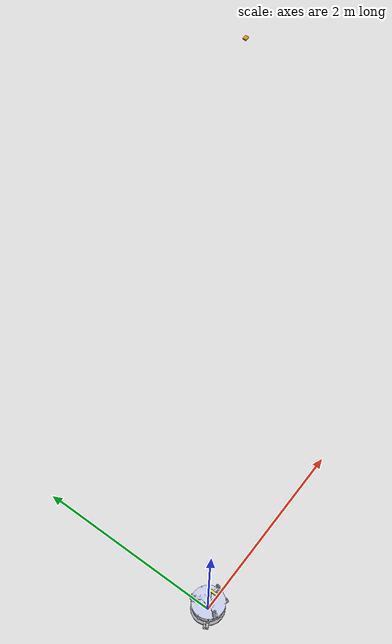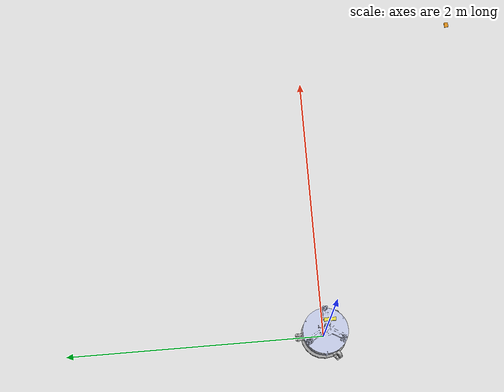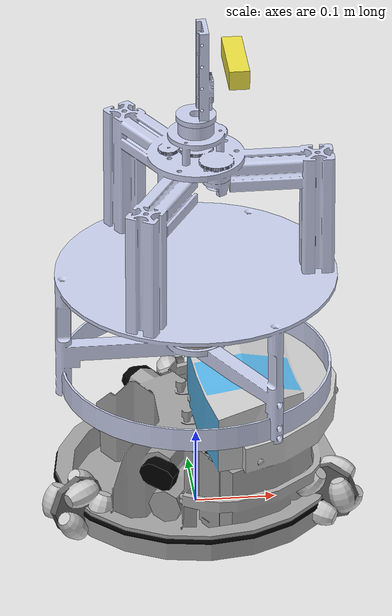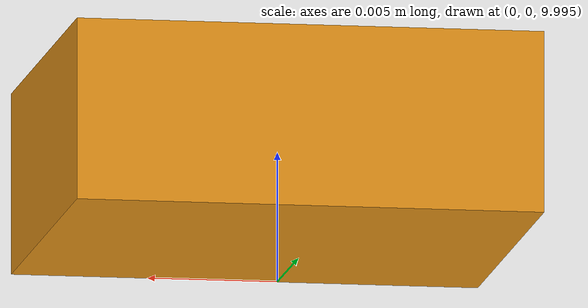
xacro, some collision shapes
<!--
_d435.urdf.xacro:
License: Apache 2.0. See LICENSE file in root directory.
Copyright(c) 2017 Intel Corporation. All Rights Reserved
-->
<?xml version="1.0"?>
<robot name="robotino" xmlns:xacro="http://wiki.ros.org/xacro">

    <xacro:include filename="$(find robotino_description)/urdf/robotino_body.urdf.xacro"/>
    <xacro:include filename="$(find robotino_description)/urdf/robotino_parts.urdf.xacro"/>
    <robotino_body/>

    <xacro:include filename="$(find realsense2_description)/urdf/_d435.urdf.xacro"/>
    <xacro:arg name="use_nominal_extrinsics" default="false"/>
    <xacro:sensor_d435
        parent="cameraholder_link">
        <origin xyz="0.0235 -0.022 0.32" rpy="3.141592 0 0"/>
    </xacro:sensor_d435>

</robot>

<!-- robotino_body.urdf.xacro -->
<robot xmlns:xacro="http://wiki.ros.org/xacro">
    <xacro:property name="M_SCALE" value="0.01"/>
    <xacro:property name="BASE_RADIUS" value="0.18"/>
    <xacro:property name="BASE_HEIGHT" value="0.03"/>
    <xacro:property name="BASE_MASS" value="20"/>

    <xacro:property name="M_PI" value="3.1415926535897931"/>
    <xacro:property name="width" value="0.5"/> <!-- Square dimensions (widthxwidth) of beams -->
    <xacro:property name="height" value="0.5"/> <!-- Link 1 -->
    <xacro:property name="width_2" value="0.1"/> <!-- Square dimensions (widthxwidth) of beams -->
    <xacro:property name="height_2" value="0.5"/> <!-- Link 1 -->
    <xacro:property name="axel_offset" value="0.05"/> <!-- Space btw top of beam and the each joint -->

    <xacro:property name="roll" value="${M_PI/2}"/> <!-- Space btw top of beam and the each joint -->
    <xacro:property name="yaw" value="${M_PI/2}"/> <!-- Space btw top of beam and the each joint -->

    <!-- robotino_body -->
    <xacro:macro name="robotino_body">
        <!-- base_link -->
        <link name="base_link"/>

        <joint name="base_body_joint" type="fixed">
            <parent link="base_link"/>
            <child link="base_body_link"/>
            <origin xyz="0 0 0" rpy="0 0 3.1415"/>
        </joint>

        <link name="base_body_link">
            <inertial>
                <mass value="${BASE_MASS}"/>
                <origin xyz="0 0 0.035" rpy="0 0 3.1415"/>
                <inertia ixx="0.8750" ixy="0.0" ixz="0.0"
                         iyy="0.875" iyz="0.0"
                         izz="1"/>
            </inertial>
            <visual>
                <origin xyz="0.01 0 0" rpy="0 0 ${M_PI/2}"/>
                <geometry>
                    <mesh filename="package://robotino_description/meshes/parts/robotino_base.dae"
                          scale="${M_SCALE} ${M_SCALE} ${M_SCALE}"/>
                </geometry>
            </visual>
            <collision>
                <origin xyz="0 0 0" rpy="0 0 ${M_PI/2}"/>
                <geometry>
                    <mesh filename="package://robotino_description/meshes/parts/robotino_base.stl"
                          scale="${M_SCALE} ${M_SCALE} ${M_SCALE}"/>
                </geometry>
            </collision>
        </link>

        <!-- wheels -->
        <xacro:wheel name="wheel2" parent="base_link">
            <origin xyz="-0.0001 0.1825 0.059154" rpy="0 0 0"/>
    	    <axis xyz="0 1 0" rpy="0 0 0"/>
        </xacro:wheel>
        <xacro:wheel name="wheel0" parent="base_link">
            <origin xyz="-0.157067 -0.090625 0.059154" rpy="0 0 2.094395102393195"/>
    	    <axis xyz="0 1 0" rpy="0 0 0"/>
        </xacro:wheel>
        <xacro:wheel name="wheel1" parent="base_link">
            <origin xyz="0.156867 -0.090625 0.059154" rpy="0 0 -2.094395102393195"/>
   	    <axis xyz="0 1 0" rpy="0 0 0"/>
        </xacro:wheel>

        <!-- others -->
        <!-- lasersensor -->
        <xacro:lasersensor name="lasersensor" parent="base_link">
            <origin xyz="0.0 0 0.26" rpy="0 0 0"/>
        </xacro:lasersensor>

        <!-- pantilt holder part 1-->
        <xacro:pantilt name="pantilt" parent="base_link">
            <origin xyz="0.0 0 0.325" rpy="0 0 0"/>
        </xacro:pantilt>

        <!-- pantilt holder part 2-->
        <xacro:pantiltring name="pantiltring" parent="base_link">
            <origin xyz="0.0 0 0.173" rpy="0 0 0"/>
        </xacro:pantiltring>

        <!-- pantilt holder part 3-->
        <xacro:cameraholder name="cameraholder" parent="pantilt_link">
            <origin xyz="0.0 0 0" rpy="0 0 0"/>
        </xacro:cameraholder>

        <!-- imu -->
        <xacro:imu name="imu" parent="base_link">
            <origin xyz="0.0 0 10" rpy="0 3.1415 0"/>
        </xacro:imu>
    </xacro:macro>
</robot>

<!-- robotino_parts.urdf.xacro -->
<robot xmlns:xacro="http://wiki.ros.org/xacro">
    <xacro:property name="M_PI" value="3.14159"/>
    <xacro:property name="M_SCALE" value="0.01"/>
    <xacro:property name="PLATFORM_HEIGHT" value="0.58"/>
    <xacro:property name="PLATFORM_RADIUS" value="0.22"/>
    <!-- wheel -->
    <xacro:macro name="wheel" params="parent name *origin *axis">
        <link name="${name}_link">
            <inertial>
                <mass value="2"/>
                <origin xyz="0 0 0" rpy="0 0 0"/>
                <inertia ixx="0.04" ixy="0.0" ixz="0.0" iyy="0.04" iyz="0.0" izz="0.04"/>
            </inertial>
            <visual>
                <origin xyz="0 0 0" rpy="0 0 0"/>
                <geometry>
                    <mesh filename="package://robotino_description/meshes/parts/robotino_wheel.dae"
                          scale="${M_SCALE} ${M_SCALE} ${M_SCALE}"/>
                </geometry>
            </visual>
            <collision>
                <origin xyz="0 0 0" rpy="0 ${M_PI/2} 0"/>
                <geometry>
                    <cylinder length="0.04" radius="0.04"/>
                </geometry>
            </collision>
        </link>

        <joint name="${name}_joint" type="continuous">
            <xacro:insert_block name="origin"/>
            <xacro:insert_block name="axis"/>
            <parent link="${parent}"/>
            <child link="${name}_link"/>
        </joint>
    </xacro:macro>
    <!-- laser sensor-->
    <xacro:macro name="lasersensor" params="parent name *origin">
        <link name="${name}_link">
            <inertial>
            <origin
                xyz="-0.00056497 7.11770000114844E-09 0.018756"
                rpy="0 0 0" />
            <mass
                value="0.015915" />
            <inertia
                ixx="7.2795244626149E-05"
                ixy="8.59363271873857E-12"
                ixz="-1.00192037963258E-06"
                iyy="7.06968247556297E-05"
                iyz="-1.1608849365102E-11"
                izz="0.000102602650447107" />
            </inertial>
            <visual>
                <origin xyz="0 0 -0.018756" rpy="1.5707963267949 0 0"/>
                <geometry>
                    <mesh filename="package://robotino_description/lidar/meshes/lidar.STL" />
                </geometry>
                <material
                    name="">
                    <color rgba="0.64314 0.61569 0.6 1" />
                </material>
            </visual>
            <collision>
                <origin xyz="0 0 -0.018756" rpy="1.5707963267949 0 0"/>
                <geometry>
                    <mesh filename="package://robotino_description/lidar/meshes/lidar.STL" />
                </geometry>
            </collision>
        </link>

        <joint name="${name}_joint" type="fixed">
            <xacro:insert_block name="origin"/>
            <parent link="${parent}"/>
            <child link="${name}_link"/>
        </joint>
    </xacro:macro>
    <!-- pantilt holder part 1-->
    <xacro:macro name="pantilt" params="parent name *origin">
        <link name="${name}_link">
        <inertial>
        <origin
            xyz="-0.00076068 0.053384 -0.00086946"
            rpy="0 0 0" />
        <mass
            value="0.17709" />
        <inertia
            ixx="0.022066"
            ixy="0.00017957"
            ixz="-1.0212E-05"
            iyy="0.016545"
            iyz="0.00019743"
            izz="0.022127" />
        </inertial>
            <visual>
                <origin xyz="0 0 0" rpy="0 0 0" />
                <geometry>
                    <mesh filename="package://robotino_description/pantiltholder/meshes/camerabase_Link.STL" />
                </geometry>
                <material
                    name="">
                    <color rgba="0.79216 0.81961 0.93333 1" />
                </material>
            </visual>
            <collision>
                <origin xyz="0 0 0" rpy="0 0 0" />
                <geometry>
                    <mesh filename="package://robotino_description/pantiltholder/meshes/camerabase_Link.STL" />
                </geometry>
            </collision>
        </link>

        <joint name="${name}_joint" type="fixed">
            <xacro:insert_block name="origin"/>
            <parent link="${parent}"/>
            <child link="${name}_link"/>
        </joint>
    </xacro:macro>
    <!-- pantilt holder part 2-->
    <xacro:macro name="pantiltring" params="parent name *origin">
        <link name="${name}_link">
            <inertial>
            <origin
                xyz="4.0968E-16 -0.015 9.18454765366783E-19"
                rpy="0 0 0" />
            <mass
                value="0.094154" />
            <inertia
                ixx="0.001312241311471"
                ixy="-6.9590790831882E-33"
                ixz="-1.3339474659106E-34"
                iyy="0.00261035959316777"
                iyz="-7.94841947889434E-20"
                izz="0.00131224131147099" />
            </inertial>
            <visual>
                <origin xyz="0 0 0" rpy="0 0 0" />
                <geometry>
                    <mesh filename="package://robotino_description/ring/meshes/ring.STL" />
                </geometry>
                <material
                    name="">
                    <color rgba="0.79216 0.81961 0.93333 1" />
                </material>
            </visual>
            <collision>
                <origin xyz="0 0 0" rpy="0 0 0" />
                <geometry>
                    <mesh filename="package://robotino_description/ring/meshes/ring.STL" />
                </geometry>
            </collision>
        </link>

        <joint name="${name}_joint" type="fixed">
            <xacro:insert_block name="origin"/>
            <parent link="${parent}"/>
            <child link="${name}_link"/>
        </joint>
    </xacro:macro>
    <!-- pantilt holder part 3-->
    <xacro:macro name="cameraholder" params="parent name *origin">
        <link name="${name}_link">
        <inertial>
        <origin
            xyz="0.08119 -9.6149E-11 -0.006335"
            rpy="0 0 0" />
        <mass
            value="0.061321" />
        <inertia
            ixx="1.6538E-06"
            ixy="1.156E-14"
            ixz="1.0178E-02"
            iyy="7.7966E-05"
            iyz="-6.9072E-14"
            izz="7.6312E-02" />
        </inertial>
            <visual>
                <origin xyz="0 0 0" rpy="0 0 0" />
                <geometry>
                    <mesh filename="package://robotino_description/pantiltholder/meshes/cameraholder_Link.STL" />
                </geometry>
                <material
                    name="">
                    <color rgba="0.79216 0.81961 0.93333 1" />
                </material>
            </visual>
            <collision>
                <origin xyz="0 0 0" rpy="0 0 0" />
            <geometry>
                <mesh filename="package://robotino_description/pantiltholder/meshes/cameraholder_Link.STL" />
            </geometry>
            </collision>
        </link>
        <joint name="${name}_joint" type="continuous">
            <xacro:insert_block name="origin"/>
            <origin
                xyz="0 0 0"
                rpy="0.0 -1.5708 0" />
            <parent link="${parent}"/>
            <child link="${name}_link"/>
            <axis xyz="0 0 1" />
        </joint>
    </xacro:macro>

    <!-- imu -->
    <xacro:macro name="imu" params="parent name *origin">
        <link name="imu_link">
            <visual>
                <origin xyz="0 0 -10" rpy="0 ${M_PI} 0"/>
                <geometry>
                    <box size="0.018 0.016 0.007"/>
                </geometry>
                <material name="xsens-orange"/>
            </visual>
            <collision>
                <origin xyz="0 0 0" rpy="0 ${M_PI} 0"/>
                <geometry>
                    <box size="0.057 0.041 0.024"/>
                </geometry>
            </collision>
            <inertial>
                <mass value="0"/>
                <origin xyz="0 0 0"/>
                <inertia ixx="1.60333333333e-05" ixy="0.0" ixz="0.0" iyy="2.80333333333e-05" iyz="0.0"
                         izz="1.60333333333e-05"/>
            </inertial>
        </link>
        <joint name="${parent}_to_imu_link" type="fixed">
            <parent link="${parent}"/>
            <child link="imu_link"/>
            <origin xyz="0 0 0" rpy="${M_PI} 0 0"/>
        </joint>
        <material name="xsens-orange">
            <color rgba="0.8862745098 0.56862745098 0.09019607843 1"/>
        </material>
    </xacro:macro>
</robot>

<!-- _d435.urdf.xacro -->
<robot name="sensor_d435" xmlns:xacro="http://ros.org/wiki/xacro">
  <!-- Includes -->
  <xacro:include filename="$(find realsense2_description)/urdf/_materials.urdf.xacro" />

  <xacro:macro name="sensor_d435" params="parent *origin name:=camera use_nominal_extrinsics:=false topics_ns:=camera  publish_pointcloud:=false ">
    <xacro:property name="M_PI" value="3.1415926535897931" />

    <!-- The following values are approximate, and the camera node
     publishing TF values with actual calibrated camera extrinsic values -->
    <xacro:property name="d435_cam_depth_to_left_ir_offset" value="0.0"/>
    <xacro:property name="d435_cam_depth_to_right_ir_offset" value="-0.050"/>
    <xacro:property name="d435_cam_depth_to_color_offset" value="0.015"/>

    <!-- The following values model the aluminum peripherial case for the
  	D435 camera, with the camera joint represented by the actual
  	peripherial camera tripod mount -->
    <xacro:property name="d435_cam_width" value="0.090"/>
    <xacro:property name="d435_cam_height" value="0.025"/>
    <xacro:property name="d435_cam_depth" value="0.02505"/>
    <xacro:property name="d435_cam_mount_from_center_offset" value="0.0149"/>

    <!-- The following offset is relative the the physical D435 camera peripherial
  	camera tripod mount -->
    <xacro:property name="d435_cam_depth_px" value="${d435_cam_mount_from_center_offset}"/>
    <xacro:property name="d435_cam_depth_py" value="0.0175"/>
    <xacro:property name="d435_cam_depth_pz" value="${d435_cam_height/2}"/>

    <!-- camera body, with origin at bottom screw mount -->
    <joint name="${name}_joint" type="fixed">
      <xacro:insert_block name="origin" />
      <parent link="${parent}"/>
      <child link="${name}_bottom_screw_frame" />
    </joint>
    <link name="${name}_bottom_screw_frame"/>

    <joint name="${name}_link_joint" type="fixed">
      <!--origin xyz="${d435_cam_depth_py} 0 ${d435_cam_depth_pz}" rpy="${M_PI/2} 0 0"/-->
      <origin xyz=" ${d435_cam_depth_px*1.5}  ${d435_cam_depth_py} ${d435_cam_depth_pz}" rpy="0 0 0"/>
      <parent link="${name}_bottom_screw_frame"/>
      <child link="${name}_link" />
    </joint>

    <link name="${name}_link">
      <visual>
        <origin xyz="${d435_cam_mount_from_center_offset} ${-d435_cam_depth_py} 0" rpy="${M_PI/2} 0 ${M_PI/2}"/>
        <geometry>
	        <mesh filename="package://realsense2_description/meshes/d435.dae"/>
        </geometry>
      </visual>
      <collision>
        <origin xyz="0 ${-d435_cam_depth_py} 0" rpy="0 0 0"/>
        <geometry>
          <box size="${d435_cam_depth} ${d435_cam_width} ${d435_cam_height}"/>
        </geometry>
      </collision>
      <inertial>
        <!-- The following are not reliable values, and should not be used for modeling -->
        <mass value="0.564" />
        <origin xyz="0 0 0" />
        <inertia ixx="0.003881243" ixy="0.0" ixz="0.0" iyy="0.000498940" iyz="0.0" izz="0.003879257" />
      </inertial>
    </link>

    <!-- Use the nominal extrinsics between camera frames if the calibrated extrinsics aren't being published. e.g. running the device in simulation  -->
    <xacro:if value="$(arg use_nominal_extrinsics)">
      <xacro:include filename="$(find realsense_gazebo_plugin)/urdf/d435.gazebo.xacro"/>

      <!-- camera depth joints and links -->
      <joint name="${name}_depth_joint" type="fixed">
        <origin xyz="0 0 0" rpy="0 0 0"/>
        <parent link="${name}_link"/>
        <child link="${name}_depth_frame" />
      </joint>
      <link name="${name}_depth_frame"/>

      <joint name="${name}_depth_optical_joint" type="fixed">
        <origin xyz="0 0 0" rpy="${-M_PI/2} 0 ${-M_PI/2}" />
        <parent link="${name}_depth_frame" />
        <child link="${name}_depth_optical_frame" />
      </joint>
      <link name="${name}_depth_optical_frame"/>

      <!-- camera left IR joints and links -->
      <joint name="${name}_left_ir_joint" type="fixed">
        <origin xyz="0 ${d435_cam_depth_to_left_ir_offset} 0" rpy="0 0 0" />
        <parent link="${name}_depth_frame" />
        <child link="${name}_left_ir_frame" />
      </joint>
      <link name="${name}_left_ir_frame"/>

      <joint name="${name}_left_ir_optical_joint" type="fixed">
        <origin xyz="0 0 0" rpy="${-M_PI/2} 0 ${-M_PI/2}" />
        <parent link="${name}_left_ir_frame" />
        <child link="${name}_left_ir_optical_frame" />
      </joint>
      <link name="${name}_left_ir_optical_frame"/>

      <!-- camera right IR joints and links -->
      <joint name="${name}_right_ir_joint" type="fixed">
        <origin xyz="0 ${d435_cam_depth_to_right_ir_offset} 0" rpy="0 0 0" />
        <parent link="${name}_depth_frame" />
        <child link="${name}_right_ir_frame" />
      </joint>
      <link name="${name}_right_ir_frame"/>

      <joint name="${name}_right_ir_optical_joint" type="fixed">
        <origin xyz="0 0 0" rpy="${-M_PI/2} 0 ${-M_PI/2}" />
        <parent link="${name}_right_ir_frame" />
        <child link="${name}_right_ir_optical_frame" />
      </joint>
      <link name="${name}_right_ir_optical_frame"/>

      <!-- camera color joints and links -->
      <joint name="${name}_color_joint" type="fixed">
        <origin xyz="0 ${d435_cam_depth_to_color_offset} 0" rpy="0 0 0" />
        <parent link="${name}_depth_frame" />
        <child link="${name}_color_frame" />
      </joint>
      <link name="${name}_color_frame"/>

      <joint name="${name}_color_optical_joint" type="fixed">
        <origin xyz="0 0 0" rpy="${-M_PI/2} 0 ${-M_PI/2}" />
        <parent link="${name}_color_frame" />
        <child link="${name}_color_optical_frame" />
      </joint>
      <link name="${name}_color_optical_frame"/>

      <!-- Realsense Gazebo Plugin -->
      <xacro:gazebo_d435 camera_name="${name}" reference_link="${name}_link" topics_ns="${topics_ns}" depth_optical_frame="${name}_depth_optical_frame" color_optical_frame="${name}_color_optical_frame" publish_pointcloud="${publish_pointcloud}"/> <!-- infrared1_optical_frame="${name}_left_ir_optical_frame" infrared2_optical_frame="${name}_right_ir_optical_frame" -->
    </xacro:if>
  </xacro:macro>
</robot>
